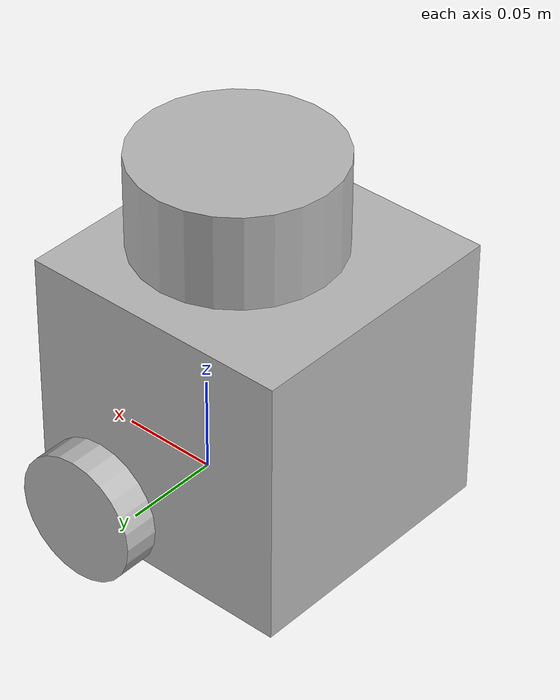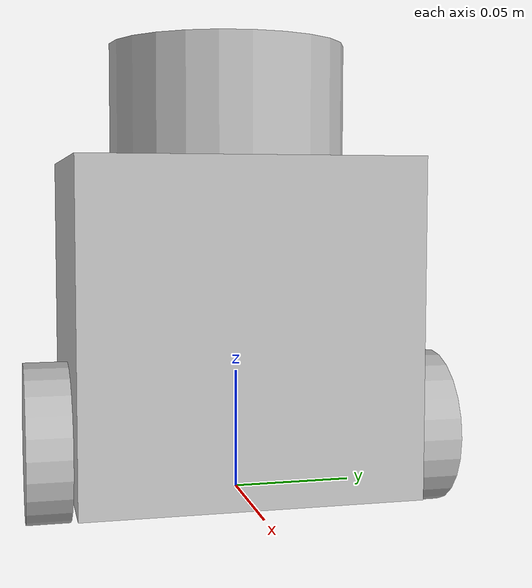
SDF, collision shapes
<?xml version='1.0'?>
<sdf version='1.6'>
  <model name='turtlebot3_burger'>
    <link name='base'>
      <inertial>
        <pose frame=''>-0.032 0 0.07 0 -0 0</pose>
        <inertia>
          <ixx>0.001</ixx>
          <ixy>0</ixy>
          <ixz>0</ixz>
          <iyy>0.001</iyy>
          <iyz>0</iyz>
          <izz>0.001</izz>
        </inertia>
        <mass>1</mass>
      </inertial>
      <self_collide>0</self_collide>
      <enable_wind>0</enable_wind>
      <kinematic>0</kinematic>
      <pose frame=''>0 0 0 0 -0 0</pose>
      <visual name='base_visual'>
        <pose frame=''>-0.032 0 0 0 -0 0</pose>
        <geometry>
          <mesh>
            <uri>model://turtlebot3_burger/meshes/burger_base.dae</uri>
            <scale>0.001 0.001 0.001</scale>
          </mesh>
        </geometry>
        <transparency>0</transparency>
        <cast_shadows>1</cast_shadows>
      </visual>
      <collision name='base_collision'>
        <laser_retro>0</laser_retro>
        <max_contacts>10</max_contacts>
        <pose frame=''>-0.032 0 0.07 0 -0 0</pose>
        <geometry>
          <box>
            <size>0.14 0.14 0.14</size>
          </box>
        </geometry>
        <surface>
          <friction>
            <ode>
              <mu>1</mu>
              <mu2>1</mu2>
              <fdir1>0 0 0</fdir1>
              <slip1>0</slip1>
              <slip2>0</slip2>
            </ode>
            <torsional>
              <coefficient>1</coefficient>
              <patch_radius>0</patch_radius>
              <surface_radius>0</surface_radius>
              <use_patch_radius>1</use_patch_radius>
              <ode>
                <slip>0</slip>
              </ode>
            </torsional>
          </friction>
          <bounce>
            <restitution_coefficient>0</restitution_coefficient>
            <threshold>1e+06</threshold>
          </bounce>
          <contact>
            <collide_without_contact>0</collide_without_contact>
            <collide_without_contact_bitmask>1</collide_without_contact_bitmask>
            <collide_bitmask>1</collide_bitmask>
            <ode>
              <soft_cfm>0</soft_cfm>
              <soft_erp>0.2</soft_erp>
              <kp>1e+13</kp>
              <kd>1</kd>
              <max_vel>0.01</max_vel>
              <min_depth>0</min_depth>
            </ode>
            <bullet>
              <split_impulse>1</split_impulse>
              <split_impulse_penetration_threshold>-0.01</split_impulse_penetration_threshold>
              <soft_cfm>0</soft_cfm>
              <soft_erp>0.2</soft_erp>
              <kp>1e+13</kp>
              <kd>1</kd>
            </bullet>
          </contact>
        </surface>
      </collision>
      <collision name='caster_collision'>
        <laser_retro>0</laser_retro>
        <max_contacts>10</max_contacts>
        <pose frame=''>-0.081 0 -0.004 0 -0 0</pose>
        <geometry>
          <sphere>
            <radius>0.005</radius>
          </sphere>
        </geometry>
        <surface>
          <friction>
            <ode>
              <mu>100000</mu>
              <mu2>100000</mu2>
              <fdir1>0 0 0</fdir1>
              <slip1>0</slip1>
              <slip2>0</slip2>
            </ode>
            <torsional>
              <coefficient>1</coefficient>
              <patch_radius>0</patch_radius>
              <surface_radius>0</surface_radius>
              <use_patch_radius>1</use_patch_radius>
              <ode>
                <slip>0</slip>
              </ode>
            </torsional>
          </friction>
          <bounce>
            <restitution_coefficient>0</restitution_coefficient>
            <threshold>1e+06</threshold>
          </bounce>
          <contact>
            <collide_without_contact>0</collide_without_contact>
            <collide_without_contact_bitmask>1</collide_without_contact_bitmask>
            <collide_bitmask>1</collide_bitmask>
            <ode>
              <soft_cfm>0</soft_cfm>
              <soft_erp>0.2</soft_erp>
              <kp>1e+13</kp>
              <kd>1</kd>
              <max_vel>0.01</max_vel>
              <min_depth>0</min_depth>
            </ode>
            <bullet>
              <split_impulse>1</split_impulse>
              <split_impulse_penetration_threshold>-0.01</split_impulse_penetration_threshold>
              <soft_cfm>0</soft_cfm>
              <soft_erp>0.2</soft_erp>
              <kp>1e+13</kp>
              <kd>1</kd>
            </bullet>
          </contact>
        </surface>
      </collision>
    </link>
    <link name='camera'>
      <inertial>
        <pose frame=''>0.02 0 0.1 0 -0 0</pose>
        <inertia>
          <ixx>1.91e-06</ixx>
          <ixy>0</ixy>
          <ixz>0</ixz>
          <iyy>7.9e-07</iyy>
          <iyz>0</iyz>
          <izz>1.14e-06</izz>
        </inertia>
        <mass>0.015</mass>
      </inertial>
      <sensor name='guide_dog_camera' type='camera'>
        <camera name='__default__'>
          <save enabled='1'>
            <path>/tmp/guide_dog_camera_save</path>
          </save>
          <horizontal_fov>1.047</horizontal_fov>
          <image>
            <width>1920</width>
            <height>1080</height>
          </image>
          <clip>
            <near>0.1</near>
            <far>100</far>
          </clip>
        </camera>
        <always_on>1</always_on>
        <update_rate>30</update_rate>
      </sensor>
      <self_collide>0</self_collide>
      <enable_wind>0</enable_wind>
      <kinematic>0</kinematic>
      <pose frame=''>0 0 0 0 -0 0</pose>
      <gravity>1</gravity>
      <visual name='camera_visual'>
        <pose frame=''>0.02 -0.01 0.115 0 1.57 0</pose>
        <geometry>
          <mesh>
            <uri>model://turtlebot3_burger/meshes/ras_cam.dae</uri>
            <scale>1 1 1</scale>
          </mesh>
        </geometry>
      </visual>
      <collision name='camera_collision'>
        <laser_retro>0</laser_retro>
        <max_contacts>10</max_contacts>
        <pose frame=''>0.02 -0.01 0.105 0 -0 0</pose>
        <geometry>
          <box>
            <size>0.003 0.03 0.025</size>
          </box>
        </geometry>
        <surface>
          <friction>
            <ode>
              <mu>1</mu>
              <mu2>1</mu2>
              <fdir1>0 0 0</fdir1>
              <slip1>0</slip1>
              <slip2>0</slip2>
            </ode>
            <torsional>
              <coefficient>1</coefficient>
              <patch_radius>0</patch_radius>
              <surface_radius>0</surface_radius>
              <use_patch_radius>1</use_patch_radius>
              <ode>
                <slip>0</slip>
              </ode>
            </torsional>
          </friction>
          <bounce>
            <restitution_coefficient>0</restitution_coefficient>
            <threshold>1e+06</threshold>
          </bounce>
          <contact>
            <collide_without_contact>0</collide_without_contact>
            <collide_without_contact_bitmask>1</collide_without_contact_bitmask>
            <collide_bitmask>1</collide_bitmask>
            <ode>
              <soft_cfm>0</soft_cfm>
              <soft_erp>0.2</soft_erp>
              <kp>1e+13</kp>
              <kd>1</kd>
              <max_vel>0.01</max_vel>
              <min_depth>0</min_depth>
            </ode>
            <bullet>
              <split_impulse>1</split_impulse>
              <split_impulse_penetration_threshold>-0.01</split_impulse_penetration_threshold>
              <soft_cfm>0</soft_cfm>
              <soft_erp>0.2</soft_erp>
              <kp>1e+13</kp>
              <kd>1</kd>
            </bullet>
          </contact>
        </surface>
      </collision>
    </link>
    <link name='left_wheel'>
      <inertial>
        <pose frame=''>0 0.08 0.023 -1.57 0 0</pose>
        <inertia>
          <ixx>0.001</ixx>
          <ixy>0</ixy>
          <ixz>0</ixz>
          <iyy>0.001</iyy>
          <iyz>0</iyz>
          <izz>0.001</izz>
        </inertia>
        <mass>0.1</mass>
      </inertial>
      <self_collide>0</self_collide>
      <enable_wind>0</enable_wind>
      <kinematic>0</kinematic>
      <pose frame=''>0 0 0 0 -0 0</pose>
      <visual name='left_wheel_visual'>
        <pose frame=''>0 0.08 0.023 0 -0 0</pose>
        <geometry>
          <mesh>
            <uri>model://turtlebot3_burger/meshes/left_tire.dae</uri>
            <scale>0.001 0.001 0.001</scale>
          </mesh>
        </geometry>
        <transparency>0</transparency>
        <cast_shadows>1</cast_shadows>
      </visual>
      <collision name='left_wheel_collision'>
        <laser_retro>0</laser_retro>
        <max_contacts>10</max_contacts>
        <pose frame=''>0 0.08 0.023 -1.57 0 0</pose>
        <geometry>
          <cylinder>
            <radius>0.033</radius>
            <length>0.018</length>
          </cylinder>
        </geometry>
        <surface>
          <friction>
            <ode>
              <mu>100000</mu>
              <mu2>100000</mu2>
              <fdir1>0 0 0</fdir1>
              <slip1>0</slip1>
              <slip2>0</slip2>
            </ode>
            <torsional>
              <coefficient>1</coefficient>
              <patch_radius>0</patch_radius>
              <surface_radius>0</surface_radius>
              <use_patch_radius>1</use_patch_radius>
              <ode>
                <slip>0</slip>
              </ode>
            </torsional>
          </friction>
          <bounce>
            <restitution_coefficient>0</restitution_coefficient>
            <threshold>1e+06</threshold>
          </bounce>
          <contact>
            <collide_without_contact>0</collide_without_contact>
            <collide_without_contact_bitmask>1</collide_without_contact_bitmask>
            <collide_bitmask>1</collide_bitmask>
            <ode>
              <soft_cfm>0</soft_cfm>
              <soft_erp>0.2</soft_erp>
              <kp>1e+13</kp>
              <kd>1</kd>
              <max_vel>0.01</max_vel>
              <min_depth>0</min_depth>
            </ode>
            <bullet>
              <split_impulse>1</split_impulse>
              <split_impulse_penetration_threshold>-0.01</split_impulse_penetration_threshold>
              <soft_cfm>0</soft_cfm>
              <soft_erp>0.2</soft_erp>
              <kp>1e+13</kp>
              <kd>1</kd>
            </bullet>
          </contact>
        </surface>
      </collision>
    </link>
    <link name='lidar'>
      <inertial>
        <pose frame=''>-0.02 0 0.161 0 -0 0</pose>
        <inertia>
          <ixx>0.001</ixx>
          <ixy>0</ixy>
          <ixz>0</ixz>
          <iyy>0.001</iyy>
          <iyz>0</iyz>
          <izz>0.001</izz>
        </inertia>
        <mass>0.125</mass>
      </inertial>
      <sensor name='hls_lfcd_lds' type='ray'>
        <always_on>1</always_on>
        <visualize>0</visualize>
        <pose frame=''>-0.032 0 0.171 0 -0 0</pose>
        <update_rate>1800</update_rate>
        <ray>
          <scan>
            <horizontal>
              <samples>360</samples>
              <resolution>1</resolution>
              <min_angle>0</min_angle>
              <max_angle>6.28</max_angle>
            </horizontal>
            <vertical>
              <samples>1</samples>
              <min_angle>0</min_angle>
              <max_angle>0</max_angle>
            </vertical>
          </scan>
          <range>
            <min>0.12</min>
            <max>3.5</max>
            <resolution>0.015</resolution>
          </range>
          <noise>
            <type>gaussian</type>
            <mean>0</mean>
            <stddev>0.01</stddev>
          </noise>
        </ray>
      </sensor>
      <self_collide>0</self_collide>
      <enable_wind>0</enable_wind>
      <kinematic>0</kinematic>
      <pose frame=''>0 0 0 0 -0 0</pose>
      <visual name='lidar_sensor_visual'>
        <pose frame=''>-0.032 0 0.171 0 -0 0</pose>
        <geometry>
          <mesh>
            <uri>model://turtlebot3_burger/meshes/lds.dae</uri>
            <scale>0.001 0.001 0.001</scale>
          </mesh>
        </geometry>
        <transparency>0</transparency>
        <cast_shadows>1</cast_shadows>
      </visual>
      <collision name='lidar_sensor_collision'>
        <laser_retro>0</laser_retro>
        <max_contacts>10</max_contacts>
        <pose frame=''>-0.02 0 0.161 0 -0 0</pose>
        <geometry>
          <cylinder>
            <radius>0.0508</radius>
            <length>0.055</length>
          </cylinder>
        </geometry>
        <surface>
          <friction>
            <ode>
              <mu>1</mu>
              <mu2>1</mu2>
              <fdir1>0 0 0</fdir1>
              <slip1>0</slip1>
              <slip2>0</slip2>
            </ode>
            <torsional>
              <coefficient>1</coefficient>
              <patch_radius>0</patch_radius>
              <surface_radius>0</surface_radius>
              <use_patch_radius>1</use_patch_radius>
              <ode>
                <slip>0</slip>
              </ode>
            </torsional>
          </friction>
          <bounce>
            <restitution_coefficient>0</restitution_coefficient>
            <threshold>1e+06</threshold>
          </bounce>
          <contact>
            <collide_without_contact>0</collide_without_contact>
            <collide_without_contact_bitmask>1</collide_without_contact_bitmask>
            <collide_bitmask>1</collide_bitmask>
            <ode>
              <soft_cfm>0</soft_cfm>
              <soft_erp>0.2</soft_erp>
              <kp>1e+13</kp>
              <kd>1</kd>
              <max_vel>0.01</max_vel>
              <min_depth>0</min_depth>
            </ode>
            <bullet>
              <split_impulse>1</split_impulse>
              <split_impulse_penetration_threshold>-0.01</split_impulse_penetration_threshold>
              <soft_cfm>0</soft_cfm>
              <soft_erp>0.2</soft_erp>
              <kp>1e+13</kp>
              <kd>1</kd>
            </bullet>
          </contact>
        </surface>
      </collision>
    </link>
    <link name='right_wheel'>
      <inertial>
        <pose frame=''>0 -0.08 0.023 -1.57 0 0</pose>
        <inertia>
          <ixx>0.001</ixx>
          <ixy>0</ixy>
          <ixz>0</ixz>
          <iyy>0.001</iyy>
          <iyz>0</iyz>
          <izz>0.001</izz>
        </inertia>
        <mass>0.1</mass>
      </inertial>
      <self_collide>0</self_collide>
      <enable_wind>0</enable_wind>
      <kinematic>0</kinematic>
      <pose frame=''>0 0 0 0 -0 0</pose>
      <visual name='right_wheel_visual'>
        <pose frame=''>0 -0.08 0.023 0 -0 0</pose>
        <geometry>
          <mesh>
            <uri>model://turtlebot3_burger/meshes/right_tire.dae</uri>
            <scale>0.001 0.001 0.001</scale>
          </mesh>
        </geometry>
        <transparency>0</transparency>
        <cast_shadows>1</cast_shadows>
      </visual>
      <collision name='right_wheel_collision'>
        <laser_retro>0</laser_retro>
        <max_contacts>10</max_contacts>
        <pose frame=''>0 -0.08 0.023 -1.57 0 0</pose>
        <geometry>
          <cylinder>
            <radius>0.033</radius>
            <length>0.018</length>
          </cylinder>
        </geometry>
        <surface>
          <friction>
            <ode>
              <mu>100000</mu>
              <mu2>100000</mu2>
              <fdir1>0 0 0</fdir1>
              <slip1>0</slip1>
              <slip2>0</slip2>
            </ode>
            <torsional>
              <coefficient>1</coefficient>
              <patch_radius>0</patch_radius>
              <surface_radius>0</surface_radius>
              <use_patch_radius>1</use_patch_radius>
              <ode>
                <slip>0</slip>
              </ode>
            </torsional>
          </friction>
          <bounce>
            <restitution_coefficient>0</restitution_coefficient>
            <threshold>1e+06</threshold>
          </bounce>
          <contact>
            <collide_without_contact>0</collide_without_contact>
            <collide_without_contact_bitmask>1</collide_without_contact_bitmask>
            <collide_bitmask>1</collide_bitmask>
            <ode>
              <soft_cfm>0</soft_cfm>
              <soft_erp>0.2</soft_erp>
              <kp>1e+13</kp>
              <kd>1</kd>
              <max_vel>0.01</max_vel>
              <min_depth>0</min_depth>
            </ode>
            <bullet>
              <split_impulse>1</split_impulse>
              <split_impulse_penetration_threshold>-0.01</split_impulse_penetration_threshold>
              <soft_cfm>0</soft_cfm>
              <soft_erp>0.2</soft_erp>
              <kp>1e+13</kp>
              <kd>1</kd>
            </bullet>
          </contact>
        </surface>
      </collision>
    </link>
    <joint name='camera_joint' type='fixed'>
      <parent>base</parent>
      <child>camera</child>
      <pose frame=''>0.02 0 0.171 0 -0 0</pose>
      <physics>
        <ode>
          <limit>
            <cfm>0</cfm>
            <erp>0.2</erp>
          </limit>
          <suspension>
            <cfm>0</cfm>
            <erp>0.2</erp>
          </suspension>
        </ode>
      </physics>
    </joint>
    <joint name='left_wheel_joint' type='revolute'>
      <parent>base</parent>
      <child>left_wheel</child>
      <pose frame=''>0 0.08 0.023 -1.57 0 0</pose>
      <axis>
        <xyz>0 0 1</xyz>
        <use_parent_model_frame>0</use_parent_model_frame>
        <limit>
          <lower>-1e+16</lower>
          <upper>1e+16</upper>
          <effort>-1</effort>
          <velocity>-1</velocity>
        </limit>
        <dynamics>
          <spring_reference>0</spring_reference>
          <spring_stiffness>0</spring_stiffness>
          <damping>0</damping>
          <friction>0</friction>
        </dynamics>
      </axis>
      <physics>
        <ode>
          <limit>
            <cfm>0</cfm>
            <erp>0.2</erp>
          </limit>
          <suspension>
            <cfm>0</cfm>
            <erp>0.2</erp>
          </suspension>
        </ode>
      </physics>
    </joint>
    <joint name='lidar_joint' type='fixed'>
      <parent>base</parent>
      <child>lidar</child>
      <pose frame=''>-0.032 0 0.171 0 -0 0</pose>
      <physics>
        <ode>
          <limit>
            <cfm>0</cfm>
            <erp>0.2</erp>
          </limit>
          <suspension>
            <cfm>0</cfm>
            <erp>0.2</erp>
          </suspension>
        </ode>
      </physics>
    </joint>
    <joint name='right_wheel_joint' type='revolute'>
      <parent>base</parent>
      <child>right_wheel</child>
      <pose frame=''>0 -0.08 0.023 -1.57 0 0</pose>
      <axis>
        <xyz>0 0 1</xyz>
        <use_parent_model_frame>0</use_parent_model_frame>
        <limit>
          <lower>-1e+16</lower>
          <upper>1e+16</upper>
          <effort>-1</effort>
          <velocity>-1</velocity>
        </limit>
        <dynamics>
          <spring_reference>0</spring_reference>
          <spring_stiffness>0</spring_stiffness>
          <damping>0</damping>
          <friction>0</friction>
        </dynamics>
      </axis>
      <physics>
        <ode>
          <limit>
            <cfm>0</cfm>
            <erp>0.2</erp>
          </limit>
          <suspension>
            <cfm>0</cfm>
            <erp>0.2</erp>
          </suspension>
        </ode>
      </physics>
    </joint>
    <static>0</static>
    <allow_auto_disable>1</allow_auto_disable>
  </model>
</sdf>
